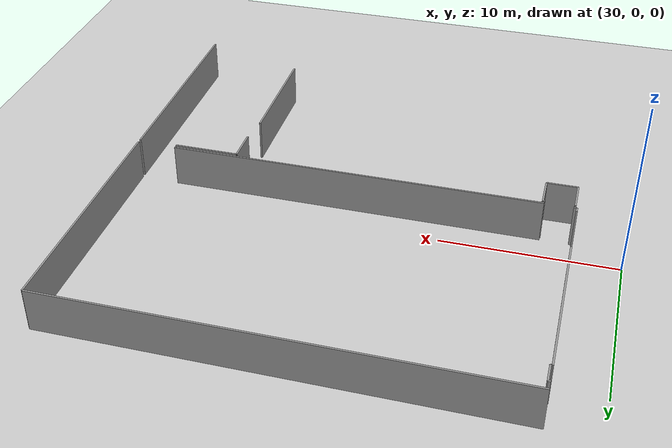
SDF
<sdf version="1.6">
 <world name="default">
  <model name="ground_plane">
   <static>1</static>
   <link name="link">
    <collision name="collision">
     <geometry><plane><normal>0 0 1</normal><size>100 100</size></plane></geometry>
     <surface><friction><ode><mu>100</mu><mu2>50</mu2></ode></friction></surface>
    </collision>
    <visual name="visual">
     <cast_shadows>0</cast_shadows>
     <geometry><plane><normal>0 0 1</normal><size>100 100</size></plane></geometry>
     <material>
      <script><uri>file://media/materials/scripts/gazebo.material</uri><name>Gazebo/Grey</name></script>
     </material>
    </visual>
   </link>
  </model>
  <model name="0510040946_A-40">
   <static>1</static>
   <link name="Wall_298">
    <collision name="Wall_298_Collision">
     <geometry><box><size>7.11757357464 0.1 2.5</size></box></geometry>
     <pose>3.55878678732 0 1.25 0 0 0</pose>
    </collision>
    <visual name="Wall_298_Visual">
     <pose>3.55878678732 0 1.25 0 0 0</pose>
     <geometry><box><size>7.11757357464 0.1 2.5</size></box></geometry>
     <material>
      <script><uri>file://media/materials/scripts/gazebo.material</uri><name>Gazebo/Grey</name></script>
      <ambient>1 1 1 1</ambient>
     </material>
    </visual>
    <pose>110.480605211 -18.0220295884 0 0 0 -1.57079632679</pose>
   </link>
   <link name="Wall_307">
    <collision name="Wall_307_Collision">
     <geometry><box><size>0.309961508462 0.1 2.5</size></box></geometry>
     <pose>0.154980754231 0 1.25 0 0 0</pose>
    </collision>
    <visual name="Wall_307_Visual">
     <pose>0.154980754231 0 1.25 0 0 0</pose>
     <geometry><box><size>0.309961508462 0.1 2.5</size></box></geometry>
     <material>
      <script><uri>file://media/materials/scripts/gazebo.material</uri><name>Gazebo/Grey</name></script>
      <ambient>1 1 1 1</ambient>
     </material>
    </visual>
    <pose>91.1478341376 -14.1028681586 0 0 0 1.57079632679</pose>
   </link>
   <link name="Wall_308">
    <collision name="Wall_308_Collision">
     <geometry><box><size>9.00118581837 0.1 2.5</size></box></geometry>
     <pose>4.50059290919 0 1.25 0 0 0</pose>
    </collision>
    <visual name="Wall_308_Visual">
     <pose>4.50059290919 0 1.25 0 0 0</pose>
     <geometry><box><size>9.00118581837 0.1 2.5</size></box></geometry>
     <material>
      <script><uri>file://media/materials/scripts/gazebo.material</uri><name>Gazebo/Grey</name></script>
      <ambient>1 1 1 1</ambient>
     </material>
    </visual>
    <pose>91.1478341376 -10.5645636886 0 0 0 1.57079632679</pose>
   </link>
   <link name="Wall_309">
    <collision name="Wall_309_Collision">
     <geometry><box><size>0.109577227214 0.1 2.5</size></box></geometry>
     <pose>0.0547886136071 0 1.25 0 0 0</pose>
    </collision>
    <visual name="Wall_309_Visual">
     <pose>0.0547886136071 0 1.25 0 0 0</pose>
     <geometry><box><size>0.109577227214 0.1 2.5</size></box></geometry>
     <material>
      <script><uri>file://media/materials/scripts/gazebo.material</uri><name>Gazebo/Grey</name></script>
      <ambient>1 1 1 1</ambient>
     </material>
    </visual>
    <pose>91.1478341376 -1.56337787022 0 0 0 0.0</pose>
   </link>
   <link name="Wall_310">
    <collision name="Wall_310_Collision">
     <geometry><box><size>1.05366620798 0.1 2.5</size></box></geometry>
     <pose>0.526833103991 0 1.25 0 0 0</pose>
    </collision>
    <visual name="Wall_310_Visual">
     <pose>0.526833103991 0 1.25 0 0 0</pose>
     <geometry><box><size>1.05366620798 0.1 2.5</size></box></geometry>
     <material>
      <script><uri>file://media/materials/scripts/gazebo.material</uri><name>Gazebo/Grey</name></script>
      <ambient>1 1 1 1</ambient>
     </material>
    </visual>
    <pose>91.2574113648 -1.56337787022 0 0 0 1.57079632679</pose>
   </link>
   <link name="Wall_311">
    <collision name="Wall_311_Collision">
     <geometry><box><size>0.133420420173 0.1 2.5</size></box></geometry>
     <pose>0.0667102100864 0 1.25 0 0 0</pose>
    </collision>
    <visual name="Wall_311_Visual">
     <pose>0.0667102100864 0 1.25 0 0 0</pose>
     <geometry><box><size>0.133420420173 0.1 2.5</size></box></geometry>
     <material>
      <script><uri>file://media/materials/scripts/gazebo.material</uri><name>Gazebo/Grey</name></script>
      <ambient>1 1 1 1</ambient>
     </material>
    </visual>
    <pose>91.2574113648 -0.509711662238 0 0 0 3.14159265359</pose>
   </link>
   <link name="Wall_313">
    <collision name="Wall_313_Collision">
     <geometry><box><size>25.6140573378 0.1 2.5</size></box></geometry>
     <pose>12.8070286689 0 1.25 0 0 0</pose>
    </collision>
    <visual name="Wall_313_Visual">
     <pose>12.8070286689 0 1.25 0 0 0</pose>
     <geometry><box><size>25.6140573378 0.1 2.5</size></box></geometry>
     <material>
      <script><uri>file://media/materials/scripts/gazebo.material</uri><name>Gazebo/Grey</name></script>
      <ambient>1 1 1 1</ambient>
     </material>
    </visual>
    <pose>91.1239909447 -0.0205457301027 0 0 0 0.0</pose>
   </link>
   <link name="Wall_314">
    <collision name="Wall_314_Collision">
     <geometry><box><size>14.0950049779 0.1 2.5</size></box></geometry>
     <pose>7.04750248895 0 1.25 0 0 0</pose>
    </collision>
    <visual name="Wall_314_Visual">
     <pose>7.04750248895 0 1.25 0 0 0</pose>
     <geometry><box><size>14.0950049779 0.1 2.5</size></box></geometry>
     <material>
      <script><uri>file://media/materials/scripts/gazebo.material</uri><name>Gazebo/Grey</name></script>
      <ambient>1 1 1 1</ambient>
     </material>
    </visual>
    <pose>116.738048282 -0.0205457301027 0 0 0 -1.57079632679</pose>
   </link>
   <link name="Wall_315">
    <collision name="Wall_315_Collision">
     <geometry><box><size>21.5193694236 0.1 2.5</size></box></geometry>
     <pose>10.7596847118 0 1.25 0 0 0</pose>
    </collision>
    <visual name="Wall_315_Visual">
     <pose>10.7596847118 0 1.25 0 0 0</pose>
     <geometry><box><size>21.5193694236 0.1 2.5</size></box></geometry>
     <material>
      <script><uri>file://media/materials/scripts/gazebo.material</uri><name>Gazebo/Grey</name></script>
      <ambient>1 1 1 1</ambient>
     </material>
    </visual>
    <pose>114.452652872 -14.115550708 0 0 0 3.14159265359</pose>
   </link>
   <link name="Wall_316">
    <collision name="Wall_316_Collision">
     <geometry><box><size>0.185472518745 0.1 2.5</size></box></geometry>
     <pose>0.0927362593724 0 1.25 0 0 0</pose>
    </collision>
    <visual name="Wall_316_Visual">
     <pose>0.0927362593724 0 1.25 0 0 0</pose>
     <geometry><box><size>0.185472518745 0.1 2.5</size></box></geometry>
     <material>
      <script><uri>file://media/materials/scripts/gazebo.material</uri><name>Gazebo/Grey</name></script>
      <ambient>1 1 1 1</ambient>
     </material>
    </visual>
    <pose>91.332872534 -14.115550708 0 0 0 3.07315958408</pose>
   </link>
   <link name="Wall_317">
    <collision name="Wall_317_Collision">
     <geometry><box><size>1.80282440376 0.1 2.5</size></box></geometry>
     <pose>0.901412201881 0 1.25 0 0 0</pose>
    </collision>
    <visual name="Wall_317_Visual">
     <pose>0.901412201881 0 1.25 0 0 0</pose>
     <geometry><box><size>1.80282440376 0.1 2.5</size></box></geometry>
     <material>
      <script><uri>file://media/materials/scripts/gazebo.material</uri><name>Gazebo/Grey</name></script>
      <ambient>1 1 1 1</ambient>
     </material>
    </visual>
    <pose>91.2532261235 -16.1219300304 0 0 0 1.57079632679</pose>
   </link>
   <link name="Wall_318">
    <collision name="Wall_318_Collision">
     <geometry><box><size>0.116045327432 0.1 2.5</size></box></geometry>
     <pose>0.0580226637159 0 1.25 0 0 0</pose>
    </collision>
    <visual name="Wall_318_Visual">
     <pose>0.0580226637159 0 1.25 0 0 0</pose>
     <geometry><box><size>0.116045327432 0.1 2.5</size></box></geometry>
     <material>
      <script><uri>file://media/materials/scripts/gazebo.material</uri><name>Gazebo/Grey</name></script>
      <ambient>1 1 1 1</ambient>
     </material>
    </visual>
    <pose>92.8962504043 -14.3191056266 0 0 0 0.0</pose>
   </link>
   <link name="Wall_319">
    <collision name="Wall_319_Collision">
     <geometry><box><size>1.79851233695 0.1 2.5</size></box></geometry>
     <pose>0.899256168475 0 1.25 0 0 0</pose>
    </collision>
    <visual name="Wall_319_Visual">
     <pose>0.899256168475 0 1.25 0 0 0</pose>
     <geometry><box><size>1.79851233695 0.1 2.5</size></box></geometry>
     <material>
      <script><uri>file://media/materials/scripts/gazebo.material</uri><name>Gazebo/Grey</name></script>
      <ambient>1 1 1 1</ambient>
     </material>
    </visual>
    <pose>93.0122957317 -14.3191056266 0 0 0 -1.57079632679</pose>
   </link>
   <link name="Wall_320">
    <collision name="Wall_320_Collision">
     <geometry><box><size>1.75907489332 0.1 2.5</size></box></geometry>
     <pose>0.879537446661 0 1.25 0 0 0</pose>
    </collision>
    <visual name="Wall_320_Visual">
     <pose>0.879537446661 0 1.25 0 0 0</pose>
     <geometry><box><size>1.75907489332 0.1 2.5</size></box></geometry>
     <material>
      <script><uri>file://media/materials/scripts/gazebo.material</uri><name>Gazebo/Grey</name></script>
      <ambient>1 1 1 1</ambient>
     </material>
    </visual>
    <pose>93.0122957317 -16.1176179636 0 0 0 -3.13914132469</pose>
   </link>
   <link name="Wall_322">
    <collision name="Wall_322_Collision">
     <geometry><box><size>1.98443851183 0.1 2.5</size></box></geometry>
     <pose>0.992219255915 0 1.25 0 0 0</pose>
    </collision>
    <visual name="Wall_322_Visual">
     <pose>0.992219255915 0 1.25 0 0 0</pose>
     <geometry><box><size>1.98443851183 0.1 2.5</size></box></geometry>
     <material>
      <script><uri>file://media/materials/scripts/gazebo.material</uri><name>Gazebo/Grey</name></script>
      <ambient>1 1 1 1</ambient>
     </material>
    </visual>
    <pose>110.701662048 -16.3389284514 0 0 0 1.57079632679</pose>
   </link>
   <link name="Wall_323">
    <collision name="Wall_323_Collision">
     <geometry><box><size>3.76240511868 0.1 2.5</size></box></geometry>
     <pose>1.88120255934 0 1.25 0 0 0</pose>
    </collision>
    <visual name="Wall_323_Visual">
     <pose>1.88120255934 0 1.25 0 0 0</pose>
     <geometry><box><size>3.76240511868 0.1 2.5</size></box></geometry>
     <material>
      <script><uri>file://media/materials/scripts/gazebo.material</uri><name>Gazebo/Grey</name></script>
      <ambient>1 1 1 1</ambient>
     </material>
    </visual>
    <pose>110.701662048 -14.3544899396 0 0 0 0.0</pose>
   </link>
   <link name="Wall_324">
    <collision name="Wall_324_Collision">
     <geometry><box><size>12.7434256834 0.1 2.5</size></box></geometry>
     <pose>6.37171284172 0 1.25 0 0 0</pose>
    </collision>
    <visual name="Wall_324_Visual">
     <pose>6.37171284172 0 1.25 0 0 0</pose>
     <geometry><box><size>12.7434256834 0.1 2.5</size></box></geometry>
     <material>
      <script><uri>file://media/materials/scripts/gazebo.material</uri><name>Gazebo/Grey</name></script>
      <ambient>1 1 1 1</ambient>
     </material>
    </visual>
    <pose>116.724097478 -14.3544899396 0 0 0 -1.57079632679</pose>
   </link>
   <pose>-58.35 12.510471347 0 0 0 0</pose>
  </model>
 </world>
</sdf>
